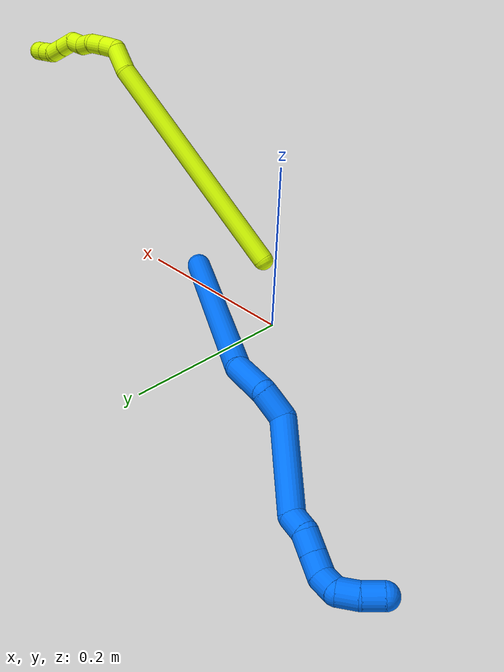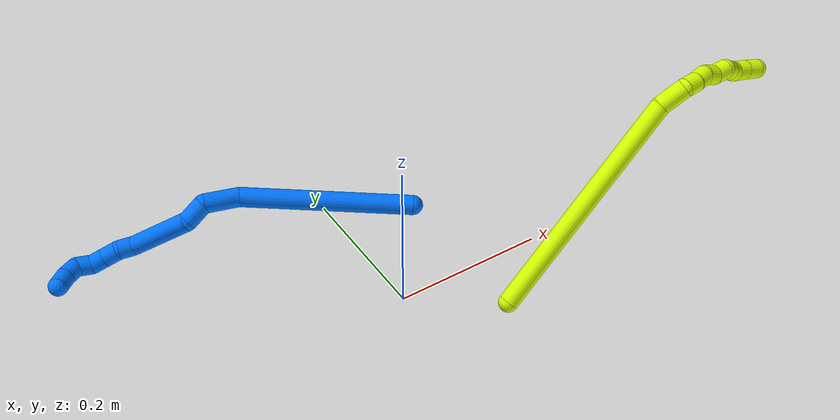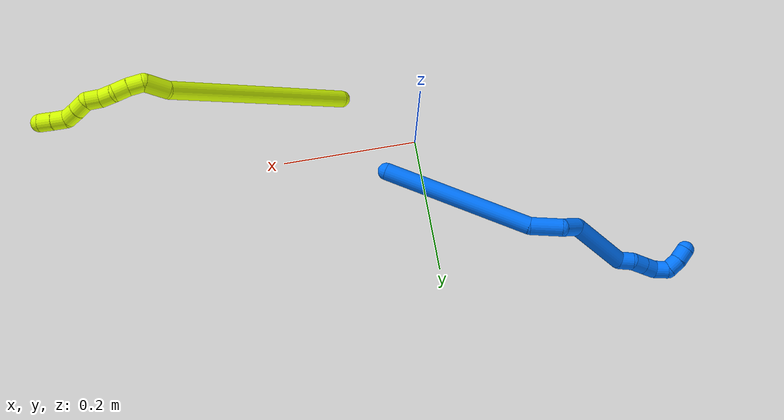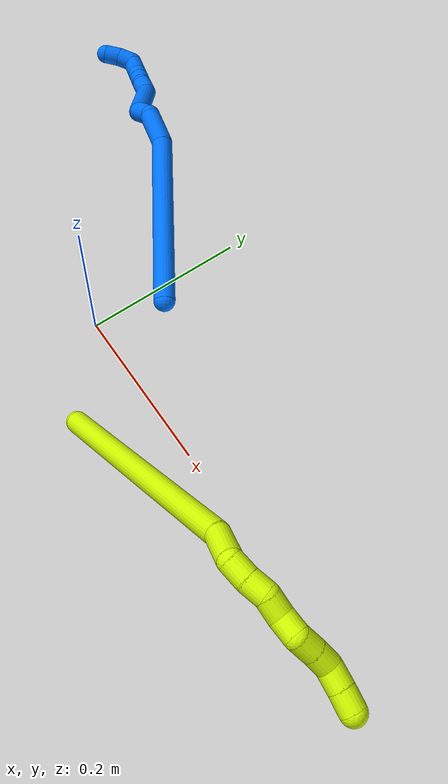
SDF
<sdf version="1.7">
 <world name="default">
  <model name="14">
   <static>0</static>
   <link name="14">
    <collision name="collision-cylinder-e_1_1_4">
     <pose>-0.007925 -0.002923 0.108001 0.027061 -0.073217 -0.000991</pose>
     <geometry><cylinder><radius>0.0125</radius><length>0.216662</length></cylinder></geometry>
     <surface>
      <friction><ode><mu>1.16</mu><mu2>1.16</mu2><slip1>0</slip1><slip2>0</slip2></ode></friction>
      <contact><ode><kp>1e+06</kp><kd>1</kd><max_vel>0</max_vel><min_depth>0.001</min_depth></ode></contact>
     </surface>
    </collision>
    <visual name="visual-cylinder-e_1_1_4">
     <pose>-0.007925 -0.002923 0.108001 0.027061 -0.073217 -0.000991</pose>
     <geometry><cylinder><radius>0.0125</radius><length>0.216662</length></cylinder></geometry>
     <material><ambient>0 0.462745 1 1</ambient></material>
    </visual>
    <collision name="collision-cylinder-e_2_4_5">
     <pose>-0.01922 -0.013645 0.236772 0.359185 -0.150808 -0.027429</pose>
     <geometry><cylinder><radius>0.0125</radius><length>0.044882</length></cylinder></geometry>
     <surface>
      <friction><ode><mu>1.16</mu><mu2>1.16</mu2><slip1>0</slip1><slip2>0</slip2></ode></friction>
      <contact><ode><kp>1e+06</kp><kd>1</kd><max_vel>0</max_vel><min_depth>0.001</min_depth></ode></contact>
     </surface>
    </collision>
    <visual name="visual-cylinder-e_2_4_5">
     <pose>-0.01922 -0.013645 0.236772 0.359185 -0.150808 -0.027429</pose>
     <geometry><cylinder><radius>0.0125</radius><length>0.044882</length></cylinder></geometry>
     <material><ambient>0 0.462745 1 1</ambient></material>
    </visual>
    <collision name="collision-cylinder-e_3_5_6">
     <pose>-0.033141 -0.027018 0.265865 0.590102 -0.811267 -0.259571</pose>
     <geometry><cylinder><radius>0.0125</radius><length>0.029094</length></cylinder></geometry>
     <surface>
      <friction><ode><mu>1.16</mu><mu2>1.16</mu2><slip1>0</slip1><slip2>0</slip2></ode></friction>
      <contact><ode><kp>1e+06</kp><kd>1</kd><max_vel>0</max_vel><min_depth>0.001</min_depth></ode></contact>
     </surface>
    </collision>
    <visual name="visual-cylinder-e_3_5_6">
     <pose>-0.033141 -0.027018 0.265865 0.590102 -0.811267 -0.259571</pose>
     <geometry><cylinder><radius>0.0125</radius><length>0.029094</length></cylinder></geometry>
     <material><ambient>0 0.462745 1 1</ambient></material>
    </visual>
    <collision name="collision-cylinder-e_4_6_7">
     <pose>-0.071466 -0.024636 0.308207 -0.229733 -0.671719 0.080507</pose>
     <geometry><cylinder><radius>0.0125</radius><length>0.089267</length></cylinder></geometry>
     <surface>
      <friction><ode><mu>1.16</mu><mu2>1.16</mu2><slip1>0</slip1><slip2>0</slip2></ode></friction>
      <contact><ode><kp>1e+06</kp><kd>1</kd><max_vel>0</max_vel><min_depth>0.001</min_depth></ode></contact>
     </surface>
    </collision>
    <visual name="visual-cylinder-e_4_6_7">
     <pose>-0.071466 -0.024636 0.308207 -0.229733 -0.671719 0.080507</pose>
     <geometry><cylinder><radius>0.0125</radius><length>0.089267</length></cylinder></geometry>
     <material><ambient>0 0.462745 1 1</ambient></material>
    </visual>
    <collision name="collision-cylinder-e_5_7_8">
     <pose>-0.101891 -0.01996 0.351331 0.345773 -0.267059 -0.046907</pose>
     <geometry><cylinder><radius>0.0125</radius><length>0.020066</length></cylinder></geometry>
     <surface>
      <friction><ode><mu>1.16</mu><mu2>1.16</mu2><slip1>0</slip1><slip2>0</slip2></ode></friction>
      <contact><ode><kp>1e+06</kp><kd>1</kd><max_vel>0</max_vel><min_depth>0.001</min_depth></ode></contact>
     </surface>
    </collision>
    <visual name="visual-cylinder-e_5_7_8">
     <pose>-0.101891 -0.01996 0.351331 0.345773 -0.267059 -0.046907</pose>
     <geometry><cylinder><radius>0.0125</radius><length>0.020066</length></cylinder></geometry>
     <material><ambient>0 0.462745 1 1</ambient></material>
    </visual>
    <collision name="collision-cylinder-e_6_8_9">
     <pose>-0.110539 -0.024115 0.368388 0.109619 -0.643469 -0.03657</pose>
     <geometry><cylinder><radius>0.0125</radius><length>0.02</length></cylinder></geometry>
     <surface>
      <friction><ode><mu>1.16</mu><mu2>1.16</mu2><slip1>0</slip1><slip2>0</slip2></ode></friction>
      <contact><ode><kp>1e+06</kp><kd>1</kd><max_vel>0</max_vel><min_depth>0.001</min_depth></ode></contact>
     </surface>
    </collision>
    <visual name="visual-cylinder-e_6_8_9">
     <pose>-0.110539 -0.024115 0.368388 0.109619 -0.643469 -0.03657</pose>
     <geometry><cylinder><radius>0.0125</radius><length>0.02</length></cylinder></geometry>
     <material><ambient>0 0.462745 1 1</ambient></material>
    </visual>
    <collision name="collision-cylinder-e_7_9_10">
     <pose>-0.122512 -0.025893 0.384312 0.112754 -0.64 -0.037401</pose>
     <geometry><cylinder><radius>0.0125</radius><length>0.020004</length></cylinder></geometry>
     <surface>
      <friction><ode><mu>1.16</mu><mu2>1.16</mu2><slip1>0</slip1><slip2>0</slip2></ode></friction>
      <contact><ode><kp>1e+06</kp><kd>1</kd><max_vel>0</max_vel><min_depth>0.001</min_depth></ode></contact>
     </surface>
    </collision>
    <visual name="visual-cylinder-e_7_9_10">
     <pose>-0.122512 -0.025893 0.384312 0.112754 -0.64 -0.037401</pose>
     <geometry><cylinder><radius>0.0125</radius><length>0.020004</length></cylinder></geometry>
     <material><ambient>0 0.462745 1 1</ambient></material>
    </visual>
    <collision name="collision-cylinder-e_8_10_11">
     <pose>-0.12936 -0.030453 0.40156 0.375562 -0.087564 -0.016649</pose>
     <geometry><cylinder><radius>0.0125</radius><length>0.02002</length></cylinder></geometry>
     <surface>
      <friction><ode><mu>1.16</mu><mu2>1.16</mu2><slip1>0</slip1><slip2>0</slip2></ode></friction>
      <contact><ode><kp>1e+06</kp><kd>1</kd><max_vel>0</max_vel><min_depth>0.001</min_depth></ode></contact>
     </surface>
    </collision>
    <visual name="visual-cylinder-e_8_10_11">
     <pose>-0.12936 -0.030453 0.40156 0.375562 -0.087564 -0.016649</pose>
     <geometry><cylinder><radius>0.0125</radius><length>0.02002</length></cylinder></geometry>
     <material><ambient>0 0.462745 1 1</ambient></material>
    </visual>
    <collision name="collision-cylinder-e_9_11_12">
     <pose>-0.131897 -0.043116 0.41486 1.15061 -0.166919 -0.108389</pose>
     <geometry><cylinder><radius>0.0125</radius><length>0.020005</length></cylinder></geometry>
     <surface>
      <friction><ode><mu>1.16</mu><mu2>1.16</mu2><slip1>0</slip1><slip2>0</slip2></ode></friction>
      <contact><ode><kp>1e+06</kp><kd>1</kd><max_vel>0</max_vel><min_depth>0.001</min_depth></ode></contact>
     </surface>
    </collision>
    <visual name="visual-cylinder-e_9_11_12">
     <pose>-0.131897 -0.043116 0.41486 1.15061 -0.166919 -0.108389</pose>
     <geometry><cylinder><radius>0.0125</radius><length>0.020005</length></cylinder></geometry>
     <material><ambient>0 0.462745 1 1</ambient></material>
    </visual>
    <collision name="collision-cylinder-e_10_12_2">
     <pose>-0.134821 -0.061844 0.420854 1.37088 -0.126501 -0.103486</pose>
     <geometry><cylinder><radius>0.0125</radius><length>0.020001</length></cylinder></geometry>
     <surface>
      <friction><ode><mu>1.16</mu><mu2>1.16</mu2><slip1>0</slip1><slip2>0</slip2></ode></friction>
      <contact><ode><kp>1e+06</kp><kd>1</kd><max_vel>0</max_vel><min_depth>0.001</min_depth></ode></contact>
     </surface>
    </collision>
    <visual name="visual-cylinder-e_10_12_2">
     <pose>-0.134821 -0.061844 0.420854 1.37088 -0.126501 -0.103486</pose>
     <geometry><cylinder><radius>0.0125</radius><length>0.020001</length></cylinder></geometry>
     <material><ambient>0 0.462745 1 1</ambient></material>
    </visual>
    <collision name="collision-sphere-2">
     <pose>-0.136083 -0.071567 0.422824 0 -0 0</pose>
     <geometry><sphere><radius>0.0125</radius></sphere></geometry>
     <surface>
      <friction><ode><mu>1.16</mu><mu2>1.16</mu2><slip1>0</slip1><slip2>0</slip2></ode></friction>
      <contact><ode><kp>1e+06</kp><kd>1</kd><max_vel>0</max_vel><min_depth>0.001</min_depth></ode></contact>
     </surface>
    </collision>
    <visual name="visual-sphere-2">
     <pose>-0.136083 -0.071567 0.422824 0 -0 0</pose>
     <geometry><sphere><radius>0.0125</radius></sphere></geometry>
     <material><ambient>0 0.462745 1 1</ambient></material>
    </visual>
    <collision name="collision-sphere-12">
     <pose>-0.133559 -0.052122 0.418884 0 -0 0</pose>
     <geometry><sphere><radius>0.0125</radius></sphere></geometry>
     <surface>
      <friction><ode><mu>1.16</mu><mu2>1.16</mu2><slip1>0</slip1><slip2>0</slip2></ode></friction>
      <contact><ode><kp>1e+06</kp><kd>1</kd><max_vel>0</max_vel><min_depth>0.001</min_depth></ode></contact>
     </surface>
    </collision>
    <visual name="visual-sphere-12">
     <pose>-0.133559 -0.052122 0.418884 0 -0 0</pose>
     <geometry><sphere><radius>0.0125</radius></sphere></geometry>
     <material><ambient>0 0.462745 1 1</ambient></material>
    </visual>
    <collision name="collision-sphere-11">
     <pose>-0.130235 -0.03411 0.410836 0 -0 0</pose>
     <geometry><sphere><radius>0.0125</radius></sphere></geometry>
     <surface>
      <friction><ode><mu>1.16</mu><mu2>1.16</mu2><slip1>0</slip1><slip2>0</slip2></ode></friction>
      <contact><ode><kp>1e+06</kp><kd>1</kd><max_vel>0</max_vel><min_depth>0.001</min_depth></ode></contact>
     </surface>
    </collision>
    <visual name="visual-sphere-11">
     <pose>-0.130235 -0.03411 0.410836 0 -0 0</pose>
     <geometry><sphere><radius>0.0125</radius></sphere></geometry>
     <material><ambient>0 0.462745 1 1</ambient></material>
    </visual>
    <collision name="collision-sphere-10">
     <pose>-0.128485 -0.026796 0.392283 0 -0 0</pose>
     <geometry><sphere><radius>0.0125</radius></sphere></geometry>
     <surface>
      <friction><ode><mu>1.16</mu><mu2>1.16</mu2><slip1>0</slip1><slip2>0</slip2></ode></friction>
      <contact><ode><kp>1e+06</kp><kd>1</kd><max_vel>0</max_vel><min_depth>0.001</min_depth></ode></contact>
     </surface>
    </collision>
    <visual name="visual-sphere-10">
     <pose>-0.128485 -0.026796 0.392283 0 -0 0</pose>
     <geometry><sphere><radius>0.0125</radius></sphere></geometry>
     <material><ambient>0 0.462745 1 1</ambient></material>
    </visual>
    <collision name="collision-sphere-9">
     <pose>-0.116538 -0.02499 0.37634 0 -0 0</pose>
     <geometry><sphere><radius>0.0125</radius></sphere></geometry>
     <surface>
      <friction><ode><mu>1.16</mu><mu2>1.16</mu2><slip1>0</slip1><slip2>0</slip2></ode></friction>
      <contact><ode><kp>1e+06</kp><kd>1</kd><max_vel>0</max_vel><min_depth>0.001</min_depth></ode></contact>
     </surface>
    </collision>
    <visual name="visual-sphere-9">
     <pose>-0.116538 -0.02499 0.37634 0 -0 0</pose>
     <geometry><sphere><radius>0.0125</radius></sphere></geometry>
     <material><ambient>0 0.462745 1 1</ambient></material>
    </visual>
    <collision name="collision-sphere-4">
     <pose>-0.015849 -0.005847 0.216002 0 -0 0</pose>
     <geometry><sphere><radius>0.0125</radius></sphere></geometry>
     <surface>
      <friction><ode><mu>1.16</mu><mu2>1.16</mu2><slip1>0</slip1><slip2>0</slip2></ode></friction>
      <contact><ode><kp>1e+06</kp><kd>1</kd><max_vel>0</max_vel><min_depth>0.001</min_depth></ode></contact>
     </surface>
    </collision>
    <visual name="visual-sphere-4">
     <pose>-0.015849 -0.005847 0.216002 0 -0 0</pose>
     <geometry><sphere><radius>0.0125</radius></sphere></geometry>
     <material><ambient>0 0.462745 1 1</ambient></material>
    </visual>
    <collision name="collision-sphere-1">
     <geometry><sphere><radius>0.0125</radius></sphere></geometry>
     <surface>
      <friction><ode><mu>1.16</mu><mu2>1.16</mu2><slip1>0</slip1><slip2>0</slip2></ode></friction>
      <contact><ode><kp>1e+06</kp><kd>1</kd><max_vel>0</max_vel><min_depth>0.001</min_depth></ode></contact>
     </surface>
    </collision>
    <visual name="visual-sphere-1">
     <geometry><sphere><radius>0.0125</radius></sphere></geometry>
     <material><ambient>0 0.462745 1 1</ambient></material>
    </visual>
    <collision name="collision-sphere-8">
     <pose>-0.104539 -0.02324 0.360436 0 -0 0</pose>
     <geometry><sphere><radius>0.0125</radius></sphere></geometry>
     <surface>
      <friction><ode><mu>1.16</mu><mu2>1.16</mu2><slip1>0</slip1><slip2>0</slip2></ode></friction>
      <contact><ode><kp>1e+06</kp><kd>1</kd><max_vel>0</max_vel><min_depth>0.001</min_depth></ode></contact>
     </surface>
    </collision>
    <visual name="visual-sphere-8">
     <pose>-0.104539 -0.02324 0.360436 0 -0 0</pose>
     <geometry><sphere><radius>0.0125</radius></sphere></geometry>
     <material><ambient>0 0.462745 1 1</ambient></material>
    </visual>
    <collision name="collision-sphere-5">
     <pose>-0.022592 -0.021444 0.257542 0 -0 0</pose>
     <geometry><sphere><radius>0.0125</radius></sphere></geometry>
     <surface>
      <friction><ode><mu>1.16</mu><mu2>1.16</mu2><slip1>0</slip1><slip2>0</slip2></ode></friction>
      <contact><ode><kp>1e+06</kp><kd>1</kd><max_vel>0</max_vel><min_depth>0.001</min_depth></ode></contact>
     </surface>
    </collision>
    <visual name="visual-sphere-5">
     <pose>-0.022592 -0.021444 0.257542 0 -0 0</pose>
     <geometry><sphere><radius>0.0125</radius></sphere></geometry>
     <material><ambient>0 0.462745 1 1</ambient></material>
    </visual>
    <collision name="collision-sphere-6">
     <pose>-0.043689 -0.032591 0.274188 0 -0 0</pose>
     <geometry><sphere><radius>0.0125</radius></sphere></geometry>
     <surface>
      <friction><ode><mu>1.16</mu><mu2>1.16</mu2><slip1>0</slip1><slip2>0</slip2></ode></friction>
      <contact><ode><kp>1e+06</kp><kd>1</kd><max_vel>0</max_vel><min_depth>0.001</min_depth></ode></contact>
     </surface>
    </collision>
    <visual name="visual-sphere-6">
     <pose>-0.043689 -0.032591 0.274188 0 -0 0</pose>
     <geometry><sphere><radius>0.0125</radius></sphere></geometry>
     <material><ambient>0 0.462745 1 1</ambient></material>
    </visual>
    <collision name="collision-sphere-7">
     <pose>-0.099243 -0.01668 0.342226 0 -0 0</pose>
     <geometry><sphere><radius>0.0125</radius></sphere></geometry>
     <surface>
      <friction><ode><mu>1.16</mu><mu2>1.16</mu2><slip1>0</slip1><slip2>0</slip2></ode></friction>
      <contact><ode><kp>1e+06</kp><kd>1</kd><max_vel>0</max_vel><min_depth>0.001</min_depth></ode></contact>
     </surface>
    </collision>
    <visual name="visual-sphere-7">
     <pose>-0.099243 -0.01668 0.342226 0 -0 0</pose>
     <geometry><sphere><radius>0.0125</radius></sphere></geometry>
     <material><ambient>0 0.462745 1 1</ambient></material>
    </visual>
    <inertial>
     <pose>-0.049109 -0.016682 0.232271 0 -0 0</pose>
     <mass>0.5</mass>
     <inertia>
      <ixx>0.000913</ixx>
      <ixy>0</ixy>
      <ixz>0</ixz>
      <iyy>0.000932</iyy>
      <iyz>0</iyz>
      <izz>0.000161</izz>
     </inertia>
    </inertial>
   </link>
   <pose>0.056204 0.064696 0.080253 -0.985963 -1.33363 0.384758</pose>
  </model>
  <model name="15">
   <static>0</static>
   <link name="15">
    <collision name="collision-cylinder-e_1_1_4">
     <pose>0.028036 0.000675 0.148508 -0.004543 0.186586 -0.000425</pose>
     <geometry><cylinder><radius>0.0125</radius><length>0.302266</length></cylinder></geometry>
     <surface>
      <friction><ode><mu>1.16</mu><mu2>1.16</mu2><slip1>0</slip1><slip2>0</slip2></ode></friction>
      <contact><ode><kp>1e+06</kp><kd>1</kd><max_vel>0</max_vel><min_depth>0.001</min_depth></ode></contact>
     </surface>
    </collision>
    <visual name="visual-cylinder-e_1_1_4">
     <pose>0.028036 0.000675 0.148508 -0.004543 0.186586 -0.000425</pose>
     <geometry><cylinder><radius>0.0125</radius><length>0.302266</length></cylinder></geometry>
     <material><ambient>0.835294 1 0 1</ambient></material>
    </visual>
    <collision name="collision-cylinder-e_2_4_5">
     <pose>0.05946 -0.003833 0.31369 0.301367 0.191696 0.029193</pose>
     <geometry><cylinder><radius>0.0125</radius><length>0.035572</length></cylinder></geometry>
     <surface>
      <friction><ode><mu>1.16</mu><mu2>1.16</mu2><slip1>0</slip1><slip2>0</slip2></ode></friction>
      <contact><ode><kp>1e+06</kp><kd>1</kd><max_vel>0</max_vel><min_depth>0.001</min_depth></ode></contact>
     </surface>
    </collision>
    <visual name="visual-cylinder-e_2_4_5">
     <pose>0.05946 -0.003833 0.31369 0.301367 0.191696 0.029193</pose>
     <geometry><cylinder><radius>0.0125</radius><length>0.035572</length></cylinder></geometry>
     <material><ambient>0.835294 1 0 1</ambient></material>
    </visual>
    <collision name="collision-cylinder-e_3_5_6">
     <pose>0.071039 -0.009169 0.337104 0.02271 0.881989 0.010719</pose>
     <geometry><cylinder><radius>0.0125</radius><length>0.021216</length></cylinder></geometry>
     <surface>
      <friction><ode><mu>1.16</mu><mu2>1.16</mu2><slip1>0</slip1><slip2>0</slip2></ode></friction>
      <contact><ode><kp>1e+06</kp><kd>1</kd><max_vel>0</max_vel><min_depth>0.001</min_depth></ode></contact>
     </surface>
    </collision>
    <visual name="visual-cylinder-e_3_5_6">
     <pose>0.071039 -0.009169 0.337104 0.02271 0.881989 0.010719</pose>
     <geometry><cylinder><radius>0.0125</radius><length>0.021216</length></cylinder></geometry>
     <material><ambient>0.835294 1 0 1</ambient></material>
    </visual>
    <collision name="collision-cylinder-e_4_6_7">
     <pose>0.087057 -0.007958 0.350239 -0.210244 0.875051 -0.098628</pose>
     <geometry><cylinder><radius>0.0125</radius><length>0.020399</length></cylinder></geometry>
     <surface>
      <friction><ode><mu>1.16</mu><mu2>1.16</mu2><slip1>0</slip1><slip2>0</slip2></ode></friction>
      <contact><ode><kp>1e+06</kp><kd>1</kd><max_vel>0</max_vel><min_depth>0.001</min_depth></ode></contact>
     </surface>
    </collision>
    <visual name="visual-cylinder-e_4_6_7">
     <pose>0.087057 -0.007958 0.350239 -0.210244 0.875051 -0.098628</pose>
     <geometry><cylinder><radius>0.0125</radius><length>0.020399</length></cylinder></geometry>
     <material><ambient>0.835294 1 0 1</ambient></material>
    </visual>
    <collision name="collision-cylinder-e_5_7_8">
     <pose>0.104516 -0.007692 0.359892 0.325124 1.22771 0.230125</pose>
     <geometry><cylinder><radius>0.0125</radius><length>0.020452</length></cylinder></geometry>
     <surface>
      <friction><ode><mu>1.16</mu><mu2>1.16</mu2><slip1>0</slip1><slip2>0</slip2></ode></friction>
      <contact><ode><kp>1e+06</kp><kd>1</kd><max_vel>0</max_vel><min_depth>0.001</min_depth></ode></contact>
     </surface>
    </collision>
    <visual name="visual-cylinder-e_5_7_8">
     <pose>0.104516 -0.007692 0.359892 0.325124 1.22771 0.230125</pose>
     <geometry><cylinder><radius>0.0125</radius><length>0.020452</length></cylinder></geometry>
     <material><ambient>0.835294 1 0 1</ambient></material>
    </visual>
    <collision name="collision-cylinder-e_6_8_9">
     <pose>0.12144 -0.009661 0.369975 0.126749 0.814659 0.054747</pose>
     <geometry><cylinder><radius>0.0125</radius><length>0.020052</length></cylinder></geometry>
     <surface>
      <friction><ode><mu>1.16</mu><mu2>1.16</mu2><slip1>0</slip1><slip2>0</slip2></ode></friction>
      <contact><ode><kp>1e+06</kp><kd>1</kd><max_vel>0</max_vel><min_depth>0.001</min_depth></ode></contact>
     </surface>
    </collision>
    <visual name="visual-cylinder-e_6_8_9">
     <pose>0.12144 -0.009661 0.369975 0.126749 0.814659 0.054747</pose>
     <geometry><cylinder><radius>0.0125</radius><length>0.020052</length></cylinder></geometry>
     <material><ambient>0.835294 1 0 1</ambient></material>
    </visual>
    <collision name="collision-cylinder-e_7_9_10">
     <pose>0.138561 -0.008882 0.3778 -1.02504 1.377 -0.867187</pose>
     <geometry><cylinder><radius>0.0125</radius><length>0.02003</length></cylinder></geometry>
     <surface>
      <friction><ode><mu>1.16</mu><mu2>1.16</mu2><slip1>0</slip1><slip2>0</slip2></ode></friction>
      <contact><ode><kp>1e+06</kp><kd>1</kd><max_vel>0</max_vel><min_depth>0.001</min_depth></ode></contact>
     </surface>
    </collision>
    <visual name="visual-cylinder-e_7_9_10">
     <pose>0.138561 -0.008882 0.3778 -1.02504 1.377 -0.867187</pose>
     <geometry><cylinder><radius>0.0125</radius><length>0.02003</length></cylinder></geometry>
     <material><ambient>0.835294 1 0 1</ambient></material>
    </visual>
    <collision name="collision-cylinder-e_8_10_11">
     <pose>0.158261 -0.006152 0.380022 -0.725044 1.40709 -0.622622</pose>
     <geometry><cylinder><radius>0.0125</radius><length>0.020012</length></cylinder></geometry>
     <surface>
      <friction><ode><mu>1.16</mu><mu2>1.16</mu2><slip1>0</slip1><slip2>0</slip2></ode></friction>
      <contact><ode><kp>1e+06</kp><kd>1</kd><max_vel>0</max_vel><min_depth>0.001</min_depth></ode></contact>
     </surface>
    </collision>
    <visual name="visual-cylinder-e_8_10_11">
     <pose>0.158261 -0.006152 0.380022 -0.725044 1.40709 -0.622622</pose>
     <geometry><cylinder><radius>0.0125</radius><length>0.020012</length></cylinder></geometry>
     <material><ambient>0.835294 1 0 1</ambient></material>
    </visual>
    <collision name="collision-cylinder-e_9_11_12">
     <pose>0.176552 -0.007354 0.386131 0.437076 1.00088 0.241721</pose>
     <geometry><cylinder><radius>0.0125</radius><length>0.02</length></cylinder></geometry>
     <surface>
      <friction><ode><mu>1.16</mu><mu2>1.16</mu2><slip1>0</slip1><slip2>0</slip2></ode></friction>
      <contact><ode><kp>1e+06</kp><kd>1</kd><max_vel>0</max_vel><min_depth>0.001</min_depth></ode></contact>
     </surface>
    </collision>
    <visual name="visual-cylinder-e_9_11_12">
     <pose>0.176552 -0.007354 0.386131 0.437076 1.00088 0.241721</pose>
     <geometry><cylinder><radius>0.0125</radius><length>0.02</length></cylinder></geometry>
     <material><ambient>0.835294 1 0 1</ambient></material>
    </visual>
    <collision name="collision-cylinder-e_10_12_2">
     <pose>0.193415 -0.012253 0.395698 0.509638 1.00515 0.284416</pose>
     <geometry><cylinder><radius>0.0125</radius><length>0.020001</length></cylinder></geometry>
     <surface>
      <friction><ode><mu>1.16</mu><mu2>1.16</mu2><slip1>0</slip1><slip2>0</slip2></ode></friction>
      <contact><ode><kp>1e+06</kp><kd>1</kd><max_vel>0</max_vel><min_depth>0.001</min_depth></ode></contact>
     </surface>
    </collision>
    <visual name="visual-cylinder-e_10_12_2">
     <pose>0.193415 -0.012253 0.395698 0.509638 1.00515 0.284416</pose>
     <geometry><cylinder><radius>0.0125</radius><length>0.020001</length></cylinder></geometry>
     <material><ambient>0.835294 1 0 1</ambient></material>
    </visual>
    <collision name="collision-sphere-2">
     <pose>0.201858 -0.014868 0.400377 0 -0 0</pose>
     <geometry><sphere><radius>0.0125</radius></sphere></geometry>
     <surface>
      <friction><ode><mu>1.16</mu><mu2>1.16</mu2><slip1>0</slip1><slip2>0</slip2></ode></friction>
      <contact><ode><kp>1e+06</kp><kd>1</kd><max_vel>0</max_vel><min_depth>0.001</min_depth></ode></contact>
     </surface>
    </collision>
    <visual name="visual-sphere-2">
     <pose>0.201858 -0.014868 0.400377 0 -0 0</pose>
     <geometry><sphere><radius>0.0125</radius></sphere></geometry>
     <material><ambient>0.835294 1 0 1</ambient></material>
    </visual>
    <collision name="collision-sphere-12">
     <pose>0.184972 -0.009638 0.391019 0 -0 0</pose>
     <geometry><sphere><radius>0.0125</radius></sphere></geometry>
     <surface>
      <friction><ode><mu>1.16</mu><mu2>1.16</mu2><slip1>0</slip1><slip2>0</slip2></ode></friction>
      <contact><ode><kp>1e+06</kp><kd>1</kd><max_vel>0</max_vel><min_depth>0.001</min_depth></ode></contact>
     </surface>
    </collision>
    <visual name="visual-sphere-12">
     <pose>0.184972 -0.009638 0.391019 0 -0 0</pose>
     <geometry><sphere><radius>0.0125</radius></sphere></geometry>
     <material><ambient>0.835294 1 0 1</ambient></material>
    </visual>
    <collision name="collision-sphere-11">
     <pose>0.168133 -0.00507 0.381242 0 -0 0</pose>
     <geometry><sphere><radius>0.0125</radius></sphere></geometry>
     <surface>
      <friction><ode><mu>1.16</mu><mu2>1.16</mu2><slip1>0</slip1><slip2>0</slip2></ode></friction>
      <contact><ode><kp>1e+06</kp><kd>1</kd><max_vel>0</max_vel><min_depth>0.001</min_depth></ode></contact>
     </surface>
    </collision>
    <visual name="visual-sphere-11">
     <pose>0.168133 -0.00507 0.381242 0 -0 0</pose>
     <geometry><sphere><radius>0.0125</radius></sphere></geometry>
     <material><ambient>0.835294 1 0 1</ambient></material>
    </visual>
    <collision name="collision-sphere-10">
     <pose>0.148389 -0.007233 0.378801 0 -0 0</pose>
     <geometry><sphere><radius>0.0125</radius></sphere></geometry>
     <surface>
      <friction><ode><mu>1.16</mu><mu2>1.16</mu2><slip1>0</slip1><slip2>0</slip2></ode></friction>
      <contact><ode><kp>1e+06</kp><kd>1</kd><max_vel>0</max_vel><min_depth>0.001</min_depth></ode></contact>
     </surface>
    </collision>
    <visual name="visual-sphere-10">
     <pose>0.148389 -0.007233 0.378801 0 -0 0</pose>
     <geometry><sphere><radius>0.0125</radius></sphere></geometry>
     <material><ambient>0.835294 1 0 1</ambient></material>
    </visual>
    <collision name="collision-sphere-9">
     <pose>0.128733 -0.01053 0.376799 0 -0 0</pose>
     <geometry><sphere><radius>0.0125</radius></sphere></geometry>
     <surface>
      <friction><ode><mu>1.16</mu><mu2>1.16</mu2><slip1>0</slip1><slip2>0</slip2></ode></friction>
      <contact><ode><kp>1e+06</kp><kd>1</kd><max_vel>0</max_vel><min_depth>0.001</min_depth></ode></contact>
     </surface>
    </collision>
    <visual name="visual-sphere-9">
     <pose>0.128733 -0.01053 0.376799 0 -0 0</pose>
     <geometry><sphere><radius>0.0125</radius></sphere></geometry>
     <material><ambient>0.835294 1 0 1</ambient></material>
    </visual>
    <collision name="collision-sphere-4">
     <pose>0.056072 0.001349 0.297016 0 -0 0</pose>
     <geometry><sphere><radius>0.0125</radius></sphere></geometry>
     <surface>
      <friction><ode><mu>1.16</mu><mu2>1.16</mu2><slip1>0</slip1><slip2>0</slip2></ode></friction>
      <contact><ode><kp>1e+06</kp><kd>1</kd><max_vel>0</max_vel><min_depth>0.001</min_depth></ode></contact>
     </surface>
    </collision>
    <visual name="visual-sphere-4">
     <pose>0.056072 0.001349 0.297016 0 -0 0</pose>
     <geometry><sphere><radius>0.0125</radius></sphere></geometry>
     <material><ambient>0.835294 1 0 1</ambient></material>
    </visual>
    <collision name="collision-sphere-1">
     <geometry><sphere><radius>0.0125</radius></sphere></geometry>
     <surface>
      <friction><ode><mu>1.16</mu><mu2>1.16</mu2><slip1>0</slip1><slip2>0</slip2></ode></friction>
      <contact><ode><kp>1e+06</kp><kd>1</kd><max_vel>0</max_vel><min_depth>0.001</min_depth></ode></contact>
     </surface>
    </collision>
    <visual name="visual-sphere-1">
     <geometry><sphere><radius>0.0125</radius></sphere></geometry>
     <material><ambient>0.835294 1 0 1</ambient></material>
    </visual>
    <collision name="collision-sphere-8">
     <pose>0.114146 -0.008791 0.363152 0 -0 0</pose>
     <geometry><sphere><radius>0.0125</radius></sphere></geometry>
     <surface>
      <friction><ode><mu>1.16</mu><mu2>1.16</mu2><slip1>0</slip1><slip2>0</slip2></ode></friction>
      <contact><ode><kp>1e+06</kp><kd>1</kd><max_vel>0</max_vel><min_depth>0.001</min_depth></ode></contact>
     </surface>
    </collision>
    <visual name="visual-sphere-8">
     <pose>0.114146 -0.008791 0.363152 0 -0 0</pose>
     <geometry><sphere><radius>0.0125</radius></sphere></geometry>
     <material><ambient>0.835294 1 0 1</ambient></material>
    </visual>
    <collision name="collision-sphere-5">
     <pose>0.062849 -0.009016 0.330363 0 -0 0</pose>
     <geometry><sphere><radius>0.0125</radius></sphere></geometry>
     <surface>
      <friction><ode><mu>1.16</mu><mu2>1.16</mu2><slip1>0</slip1><slip2>0</slip2></ode></friction>
      <contact><ode><kp>1e+06</kp><kd>1</kd><max_vel>0</max_vel><min_depth>0.001</min_depth></ode></contact>
     </surface>
    </collision>
    <visual name="visual-sphere-5">
     <pose>0.062849 -0.009016 0.330363 0 -0 0</pose>
     <geometry><sphere><radius>0.0125</radius></sphere></geometry>
     <material><ambient>0.835294 1 0 1</ambient></material>
    </visual>
    <collision name="collision-sphere-6">
     <pose>0.079228 -0.009322 0.343845 0 -0 0</pose>
     <geometry><sphere><radius>0.0125</radius></sphere></geometry>
     <surface>
      <friction><ode><mu>1.16</mu><mu2>1.16</mu2><slip1>0</slip1><slip2>0</slip2></ode></friction>
      <contact><ode><kp>1e+06</kp><kd>1</kd><max_vel>0</max_vel><min_depth>0.001</min_depth></ode></contact>
     </surface>
    </collision>
    <visual name="visual-sphere-6">
     <pose>0.079228 -0.009322 0.343845 0 -0 0</pose>
     <geometry><sphere><radius>0.0125</radius></sphere></geometry>
     <material><ambient>0.835294 1 0 1</ambient></material>
    </visual>
    <collision name="collision-sphere-7">
     <pose>0.094886 -0.006594 0.356632 0 -0 0</pose>
     <geometry><sphere><radius>0.0125</radius></sphere></geometry>
     <surface>
      <friction><ode><mu>1.16</mu><mu2>1.16</mu2><slip1>0</slip1><slip2>0</slip2></ode></friction>
      <contact><ode><kp>1e+06</kp><kd>1</kd><max_vel>0</max_vel><min_depth>0.001</min_depth></ode></contact>
     </surface>
    </collision>
    <visual name="visual-sphere-7">
     <pose>0.094886 -0.006594 0.356632 0 -0 0</pose>
     <geometry><sphere><radius>0.0125</radius></sphere></geometry>
     <material><ambient>0.835294 1 0 1</ambient></material>
    </visual>
    <inertial>
     <pose>0.063574 -0.002667 0.231865 0 -0 0</pose>
     <mass>0.5</mass>
     <inertia>
      <ixx>0.002299</ixx>
      <ixy>0</ixy>
      <ixz>0</ixz>
      <iyy>0.002328</iyy>
      <iyz>0</iyz>
      <izz>-0.000417</izz>
     </inertia>
    </inertial>
   </link>
   <pose>0.098687 -0.084245 0.011499 0.075873 0.709487 0.192324</pose>
  </model>
 </world>
</sdf>
